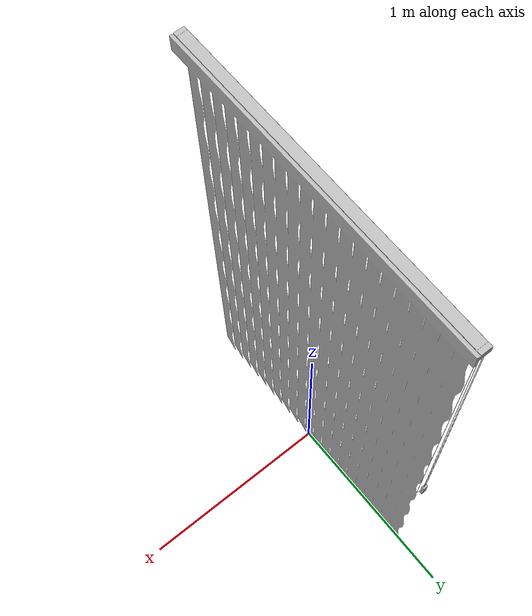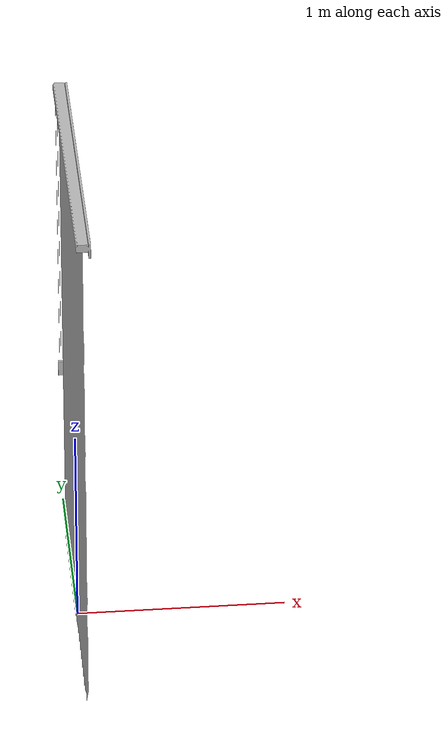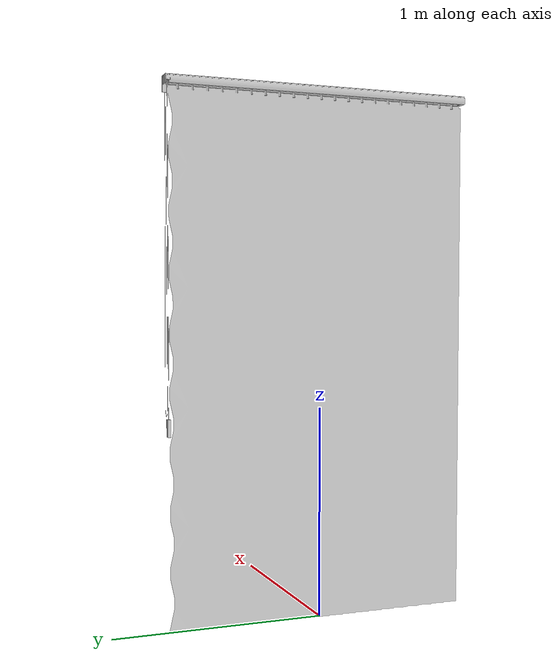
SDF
<?xml version='1.0'?>
<sdf version='1.4'>
  <model name='748'>
    <pose>0 0 0 0 0 0</pose>
    <static>true</static>
    <link name='link'>
      <collision name='collision'>
        <pose>0 0 0 0 0 0</pose>
        <geometry>
          <box>
            <size>0.0699983 1.5 2</size>
          </box>
        </geometry>
      </collision>
      <visual name='visual'>
        <pose>0 0 0 0 0 0</pose>
        <geometry>
          <mesh><uri>model://748/748.dae</uri></mesh>
        </geometry>
      </visual>
    </link>
  </model>
</sdf>
